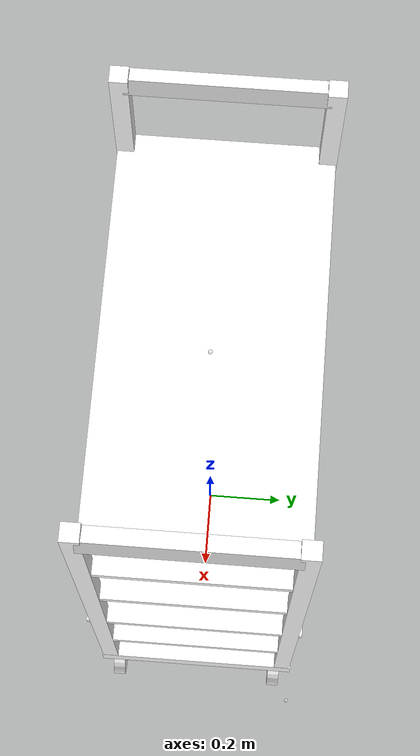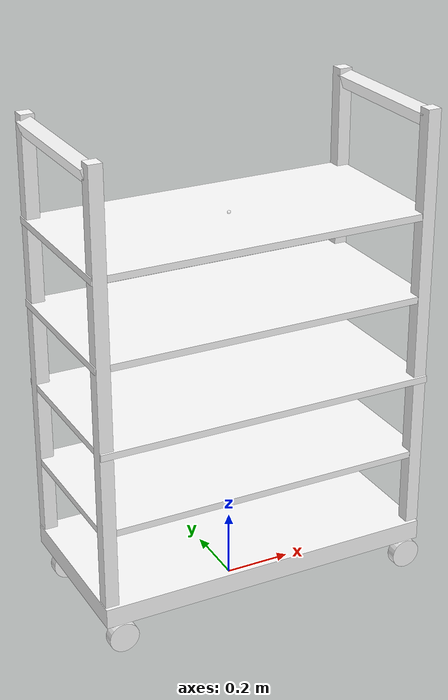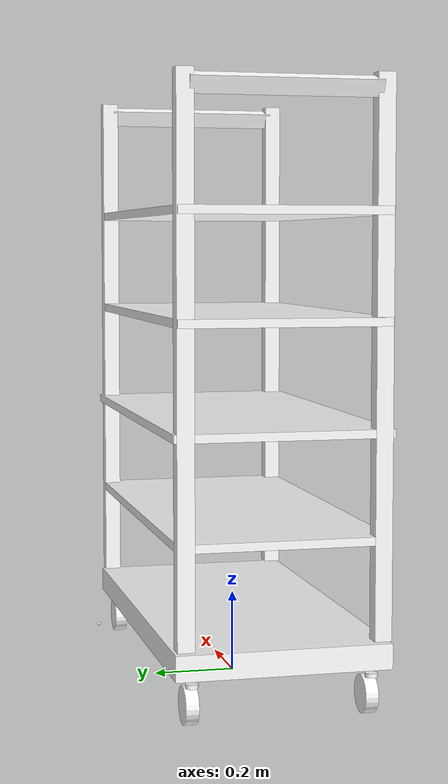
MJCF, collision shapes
<mujoco model="mobile_shelving_cart">
  <default>
    <default class="visual">
      <geom group="1" type="mesh" contype="0" conaffinity="0" density="100"/>
    </default>
    <default class="collision">
      <geom group="0" type="mesh" density="100" solimp="0.95 0.98 0.001" solref="0.004 1" rgba="1 1 1 0.25"/>
    </default>
    <default class="steering_wheel_joint">
      <joint frictionloss="0.001" damping="0.001" limited="false" type="hinge"/>
    </default>
    <default class="wheel_joint">
      <joint frictionloss="0.001" damping="0.01" limited="false" type="hinge"/>
    </default>
  </default>
  <asset>
    <material name="opaque__metal__glossy_a_mobileshelvingcart_c.001" specular="1.0" shininess="0.2" rgba="1.000000 1.000000 1.000000 1.000000"/>
    <texture type="2d" name="T_Plastic_Blue_A_Albedo" file="textures/T_Plastic_Blue_A_Albedo.png"/>
    <material name="opaque__metal__painted_blue_rough_a_mobileshelvingcart_c.001" texture="T_Plastic_Blue_A_Albedo" specular="1.0" shininess="0.2"/>
    <material name="opaque__metal__rough_a_mobileshelvingcart_c.001" specular="1.0" shininess="0.2" rgba="1.000000 1.000000 1.000000 1.000000"/>
    <material name="opaque__rubber__black_glossy_a_mobileshelvingcart_c.001" specular="1.0" shininess="0.2" rgba="0.060199 0.060199 0.060199 1.000000"/>
    <texture type="2d" name="T_Aluminium_Brushed_A1_Albedo" file="textures/T_Aluminium_Brushed_A1_Albedo.png"/>
    <material name="opaque__woodpainted_beige_glossy_a_mobileshelvingcart_c.001" texture="T_Aluminium_Brushed_A1_Albedo" specular="1.0" shininess="0.2"/>
    <mesh file="meshes/mobile_shelving_cart_0.obj" name="mobile_shelving_cart_0"/>
    <mesh file="meshes/mobile_shelving_cart_1.obj" name="mobile_shelving_cart_1"/>
    <mesh file="meshes/mobile_shelving_cart_wheel_disk.obj" name="mobile_shelving_cart_wheel_disk"/>
    <mesh file="meshes/mobile_shelving_cart_wheel_hinge.obj" name="mobile_shelving_cart_wheel_hinge"/>
    <mesh file="meshes/mobile_shelving_cart_wheel_rubber.obj" name="mobile_shelving_cart_wheel_rubber"/>
  </asset>
  <worldbody>
    <body>
      <body name="object">
        <geom mesh="mobile_shelving_cart_0" material="opaque__woodpainted_beige_glossy_a_mobileshelvingcart_c.001" class="visual"/>
        <geom mesh="mobile_shelving_cart_1" material="opaque__metal__painted_blue_rough_a_mobileshelvingcart_c.001" class="visual"/>
        <geom name="collider_box_8852657b" type="box" pos="-0.004100570000000026 -8.539923154706126e-21 0.90642643" size="0.01 0.24683195 0.51" quat="2.164890140588733e-17 0.7071067811865475 0.0 -0.7071067811865475" class="collision"/>
        <geom name="collider_box_b9b569ab" type="box" pos="0 0 0.14375666805853637" size="0.03 0.2521887505521665 0.51" quat="2.091569821910527e-05 -0.7071067808772121 -2.091569821923709e-05 0.7071067808772123" class="collision"/>
        <geom name="collider_box_729c0aef" type="box" pos="0 0 0.4105861700000001" size="0.01 0.248126335 0.51" quat="2.164890140588733e-17 0.7071067811865475 0.0 -0.7071067811865475" class="collision"/>
        <geom name="collider_box_7010ef2a" type="box" pos="0.49436788712018526 -0.0011372550000000102 1.4270434762774418" size="0.02 0.02 0.22" quat="0.11201332389959849 0.11201332389959853 0.6981783549129574 -0.6981783549129574" class="collision"/>
        <geom name="collider_box_7010ef2a_1" type="box" pos="-0.49436788712018526 -0.0011372550000000102 1.4270434762774418" size="0.02 0.02 0.22" quat="0.11201332389959849 0.11201332389959853 0.6981783549129574 -0.6981783549129574" class="collision"/>
        <geom name="collider_box_f84d423e" type="box" pos="0.4904662319855294 0.22861775878582985 0.8193403933891392" size="0.02 0.02 0.64" quat="1 0 0 0" class="collision"/>
        <geom name="collider_box_f84d423e_1" type="box" pos="-0.4904662319855294 0.22861775878582985 0.8193403933891392" size="0.02 0.02 0.64" quat="1 0 0 0" class="collision"/>
        <geom name="collider_box_f84d423e_2" type="box" pos="-0.4904662319855294 -0.22861775878582985 0.8193403933891392" size="0.02 0.02 0.64" quat="1 0 0 0" class="collision"/>
        <geom name="collider_box_f84d423e_4" type="box" pos="0.4904662319855294 -0.22861775878582985 0.8193403933891392" size="0.02 0.02 0.64" quat="1 0 0 0" class="collision"/>
        <geom name="collider_box_03b43fa2" type="box" pos="-0.004065410000000007 -1.256936854908579e-17 1.15457548" size="0.01 0.24673604 0.51" quat="2.164890140588733e-17 0.7071067811865475 0.0 -0.7071067811865475" class="collision"/>
        <geom name="collider_box_c2936a64" type="box" pos="0 0 0.654224332370507" size="0.01 0.2558301123579767 0.51" quat="0.00018623985631862825 -0.7068632983787615 0.0001390643323498997 0.7073501419954088" class="collision"/>
        <!-- Front-left wheel -->
        <body name="wheel_fl_rot" pos="0.46 0.21 0.107">
          <joint name="wheel_fl_zrot" axis="0 0 1" class="steering_wheel_joint"/>
          <geom type="mesh" mesh="mobile_shelving_cart_wheel_hinge" material="opaque__metal__glossy_a_mobileshelvingcart_c.001" quat="0 0 0 1" class="visual"/>
          <geom type="cylinder" size="0.015 0.005" pos="0 0 -0.01" class="collision"/>
          <body name="wheel_fl_spin" pos="0.033 0 -0.062">
            <joint name="wheel_fl_spin" type="hinge" axis="0 1 0" class="wheel_joint"/>
            <geom type="mesh" mesh="mobile_shelving_cart_wheel_disk" material="opaque__metal__glossy_a_mobileshelvingcart_c.001" class="visual"/>
            <geom type="mesh" mesh="mobile_shelving_cart_wheel_rubber" material="opaque__rubber__black_glossy_a_mobileshelvingcart_c.001" class="visual"/>
            <geom type="cylinder" size="0.045 0.015" quat="0.7071068 0.7071068 0 0" class="collision"/>
          </body>
        </body>
        <!-- Front-right wheel -->
        <body name="wheel_fr_rot" pos="0.46 -0.21 0.107">
          <joint name="wheel_fr_zrot" type="hinge" axis="0 0 1" class="steering_wheel_joint"/>
          <geom type="mesh" mesh="mobile_shelving_cart_wheel_hinge" material="opaque__metal__glossy_a_mobileshelvingcart_c.001" quat="0 0 0 1" class="visual"/>
          <geom type="cylinder" size="0.015 0.005" pos="0 0 -0.01" class="collision"/>
          <body name="wheel_fr_spin" pos="0.033 0 -0.062">
            <joint name="wheel_fr_spin" type="hinge" axis="0 1 0" class="wheel_joint"/>
            <geom type="mesh" mesh="mobile_shelving_cart_wheel_disk" material="opaque__metal__glossy_a_mobileshelvingcart_c.001" class="visual"/>
            <geom type="mesh" mesh="mobile_shelving_cart_wheel_rubber" material="opaque__rubber__black_glossy_a_mobileshelvingcart_c.001" class="visual"/>
            <geom type="cylinder" size="0.045 0.015" quat="0.7071068 0.7071068 0 0" class="collision"/>
          </body>
        </body>
        <!-- Rear-left wheel -->
        <body name="wheel_rl_rot" pos="-0.48 0.21 0.107">
          <joint name="wheel_rl_zrot" type="hinge" axis="0 0 1" class="steering_wheel_joint"/>
          <geom type="mesh" mesh="mobile_shelving_cart_wheel_hinge" material="opaque__metal__glossy_a_mobileshelvingcart_c.001" quat="0 0 0 1" class="visual"/>
          <geom type="cylinder" size="0.015 0.005" pos="0 0 -0.01" class="collision"/>
          <body name="wheel_rl_spin" pos="0.033 0 -0.062">
            <joint name="wheel_rl_spin" type="hinge" axis="0 1 0" class="wheel_joint"/>
            <geom type="mesh" mesh="mobile_shelving_cart_wheel_disk" material="opaque__metal__glossy_a_mobileshelvingcart_c.001" class="visual"/>
            <geom type="mesh" mesh="mobile_shelving_cart_wheel_rubber" material="opaque__rubber__black_glossy_a_mobileshelvingcart_c.001" class="visual"/>
            <geom type="cylinder" size="0.045 0.015" quat="0.7071068 0.7071068 0 0" class="collision"/>
          </body>
        </body>
        <!-- Rear-right wheel -->
        <body name="wheel_rr_rot" pos="-0.48 -0.21 0.107">
          <joint name="wheel_rr_zrot" type="hinge" axis="0 0 1" class="steering_wheel_joint"/>
          <geom type="mesh" mesh="mobile_shelving_cart_wheel_hinge" material="opaque__metal__glossy_a_mobileshelvingcart_c.001" quat="0 0 0 1" class="visual"/>
          <geom type="cylinder" size="0.015 0.005" pos="0 0 -0.01" class="collision"/>
          <body name="wheel_rr_spin" pos="0.033 0 -0.062">
            <joint name="wheel_rr_spin" type="hinge" axis="0 1 0" class="wheel_joint"/>
            <geom type="mesh" mesh="mobile_shelving_cart_wheel_disk" material="opaque__metal__glossy_a_mobileshelvingcart_c.001" class="visual"/>
            <geom type="mesh" mesh="mobile_shelving_cart_wheel_rubber" material="opaque__rubber__black_glossy_a_mobileshelvingcart_c.001" class="visual"/>
            <geom type="cylinder" size="0.045 0.015" quat="0.7071068 0.7071068 0 0" class="collision"/>
          </body>
        </body>
      </body>
      <site name="bottom_site" pos="0 0 0.000365" rgba="1 1 1 0.5" size="0.005"/>
      <site name="top_site" pos="0 0 1.17" rgba="1 1 1 0.5" size="0.005"/>
      <site name="horizontal_radius_site" pos="0.571391 0.253603 0" rgba="1 1 1 0.5" size="0.005"/>
    </body>
  </worldbody>
</mujoco>
